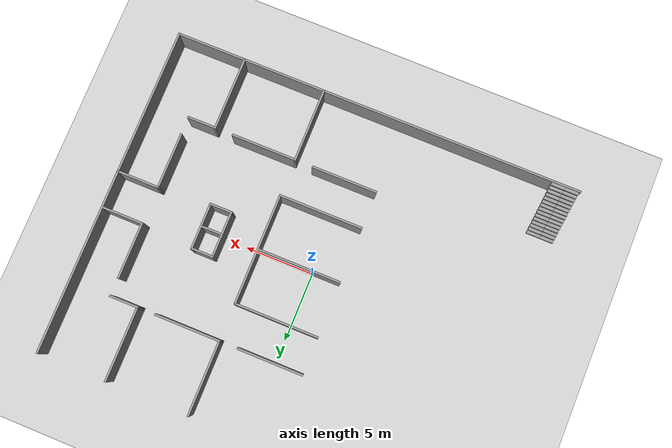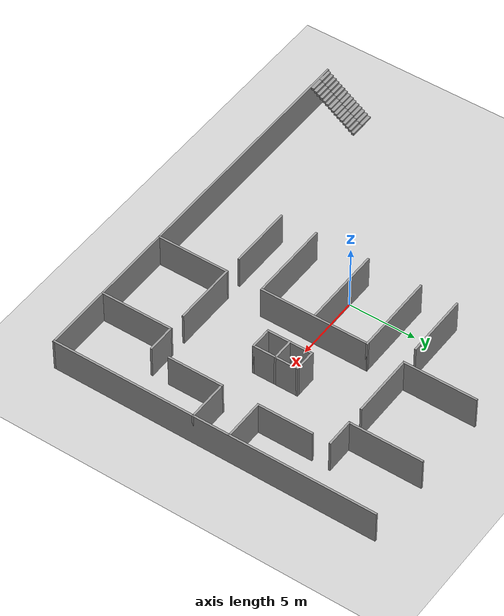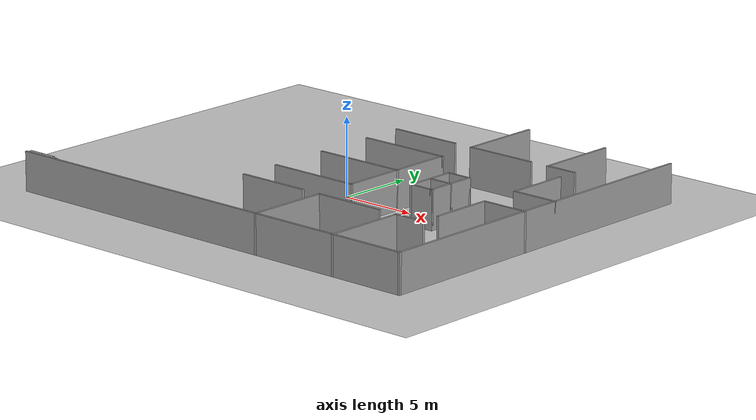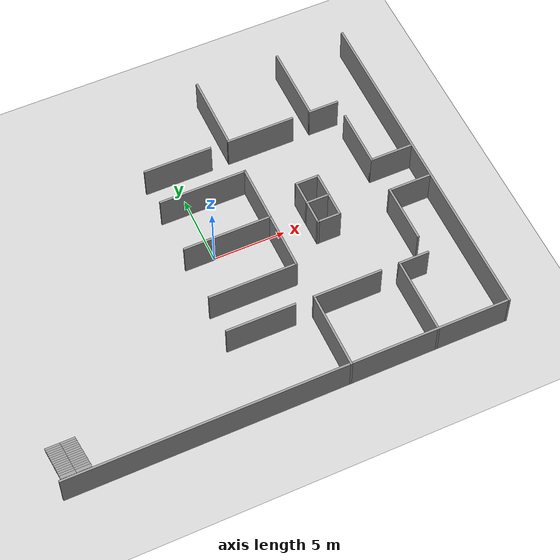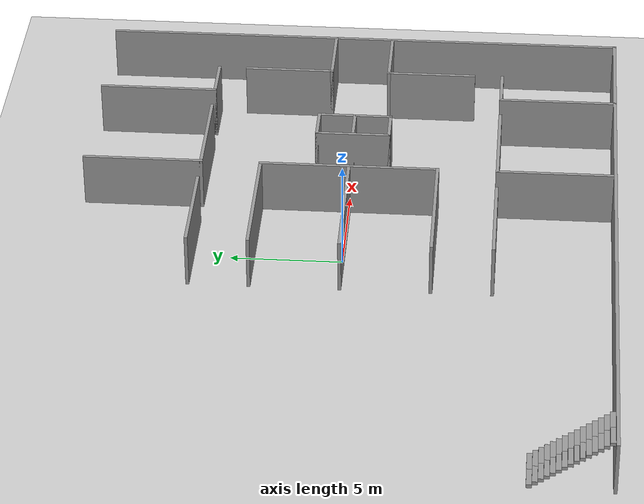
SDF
<sdf version="1.6">
 <world name="default">
  <model name="ground_plane">
   <static>1</static>
   <link name="link">
    <collision name="collision">
     <geometry><plane><normal>0 0 1</normal><size>100 100</size></plane></geometry>
     <surface>
      <contact><collide_bitmask>65535</collide_bitmask></contact>
      <friction><ode><mu>100</mu><mu2>50</mu2></ode></friction>
     </surface>
    </collision>
    <visual name="visual">
     <cast_shadows>0</cast_shadows>
     <geometry><plane><normal>0 0 1</normal><size>100 100</size></plane></geometry>
     <material>
      <script><uri>file://media/materials/scripts/gazebo.material</uri><name>Gazebo/Grey</name></script>
     </material>
    </visual>
   </link>
  </model>
  <model name="hospital_01">
   <pose>0 0 0 0 0 -1.57</pose>
   <link name="Stairs_7">
    <visual name="Stairs_7_Visual_0">
     <pose>8.53246 -13.4386 0.083333 0 -0 1.5708</pose>
     <geometry><box><size>1 0.233333 0.166667</size></box></geometry>
     <material>
      <script><uri>file://media/materials/scripts/gazebo.material</uri><name>Gazebo/Grey</name></script>
      <ambient>1 1 1 1</ambient>
     </material>
     <meta><layer>0</layer></meta>
    </visual>
    <collision name="Stairs_7_Collision_0">
     <geometry><box><size>1 0.233333 0.166667</size></box></geometry>
     <pose>8.53246 -13.4386 0.083333 0 -0 1.5708</pose>
    </collision>
    <visual name="Stairs_7_Visual_1">
     <pose>8.7658 -13.4386 0.25 0 -0 1.5708</pose>
     <geometry><box><size>1 0.233333 0.166667</size></box></geometry>
     <material>
      <script><uri>file://media/materials/scripts/gazebo.material</uri><name>Gazebo/Grey</name></script>
      <ambient>1 1 1 1</ambient>
     </material>
     <meta><layer>0</layer></meta>
    </visual>
    <collision name="Stairs_7_Collision_1">
     <geometry><box><size>1 0.233333 0.166667</size></box></geometry>
     <pose>8.7658 -13.4386 0.25 0 -0 1.5708</pose>
    </collision>
    <visual name="Stairs_7_Visual_2">
     <pose>8.99913 -13.4386 0.416667 0 -0 1.5708</pose>
     <geometry><box><size>1 0.233333 0.166667</size></box></geometry>
     <material>
      <script><uri>file://media/materials/scripts/gazebo.material</uri><name>Gazebo/Grey</name></script>
      <ambient>1 1 1 1</ambient>
     </material>
     <meta><layer>0</layer></meta>
    </visual>
    <collision name="Stairs_7_Collision_2">
     <geometry><box><size>1 0.233333 0.166667</size></box></geometry>
     <pose>8.99913 -13.4386 0.416667 0 -0 1.5708</pose>
    </collision>
    <visual name="Stairs_7_Visual_3">
     <pose>9.23246 -13.4386 0.583333 0 -0 1.5708</pose>
     <geometry><box><size>1 0.233333 0.166667</size></box></geometry>
     <material>
      <script><uri>file://media/materials/scripts/gazebo.material</uri><name>Gazebo/Grey</name></script>
      <ambient>1 1 1 1</ambient>
     </material>
     <meta><layer>0</layer></meta>
    </visual>
    <collision name="Stairs_7_Collision_3">
     <geometry><box><size>1 0.233333 0.166667</size></box></geometry>
     <pose>9.23246 -13.4386 0.583333 0 -0 1.5708</pose>
    </collision>
    <visual name="Stairs_7_Visual_4">
     <pose>9.4658 -13.4386 0.75 0 -0 1.5708</pose>
     <geometry><box><size>1 0.233333 0.166667</size></box></geometry>
     <material>
      <script><uri>file://media/materials/scripts/gazebo.material</uri><name>Gazebo/Grey</name></script>
      <ambient>1 1 1 1</ambient>
     </material>
     <meta><layer>0</layer></meta>
    </visual>
    <collision name="Stairs_7_Collision_4">
     <geometry><box><size>1 0.233333 0.166667</size></box></geometry>
     <pose>9.4658 -13.4386 0.75 0 -0 1.5708</pose>
    </collision>
    <visual name="Stairs_7_Visual_5">
     <pose>9.69913 -13.4386 0.916667 0 -0 1.5708</pose>
     <geometry><box><size>1 0.233333 0.166667</size></box></geometry>
     <material>
      <script><uri>file://media/materials/scripts/gazebo.material</uri><name>Gazebo/Grey</name></script>
      <ambient>1 1 1 1</ambient>
     </material>
     <meta><layer>0</layer></meta>
    </visual>
    <collision name="Stairs_7_Collision_5">
     <geometry><box><size>1 0.233333 0.166667</size></box></geometry>
     <pose>9.69913 -13.4386 0.916667 0 -0 1.5708</pose>
    </collision>
    <visual name="Stairs_7_Visual_6">
     <pose>9.93246 -13.4386 1.08333 0 -0 1.5708</pose>
     <geometry><box><size>1 0.233333 0.166667</size></box></geometry>
     <material>
      <script><uri>file://media/materials/scripts/gazebo.material</uri><name>Gazebo/Grey</name></script>
      <ambient>1 1 1 1</ambient>
     </material>
     <meta><layer>0</layer></meta>
    </visual>
    <collision name="Stairs_7_Collision_6">
     <geometry><box><size>1 0.233333 0.166667</size></box></geometry>
     <pose>9.93246 -13.4386 1.08333 0 -0 1.5708</pose>
    </collision>
    <visual name="Stairs_7_Visual_7">
     <pose>10.1658 -13.4386 1.25 0 -0 1.5708</pose>
     <geometry><box><size>1 0.233333 0.166667</size></box></geometry>
     <material>
      <script><uri>file://media/materials/scripts/gazebo.material</uri><name>Gazebo/Grey</name></script>
      <ambient>1 1 1 1</ambient>
     </material>
     <meta><layer>0</layer></meta>
    </visual>
    <collision name="Stairs_7_Collision_7">
     <geometry><box><size>1 0.233333 0.166667</size></box></geometry>
     <pose>10.1658 -13.4386 1.25 0 -0 1.5708</pose>
    </collision>
    <visual name="Stairs_7_Visual_8">
     <pose>10.3991 -13.4386 1.41667 0 -0 1.5708</pose>
     <geometry><box><size>1 0.233333 0.166667</size></box></geometry>
     <material>
      <script><uri>file://media/materials/scripts/gazebo.material</uri><name>Gazebo/Grey</name></script>
      <ambient>1 1 1 1</ambient>
     </material>
     <meta><layer>0</layer></meta>
    </visual>
    <collision name="Stairs_7_Collision_8">
     <geometry><box><size>1 0.233333 0.166667</size></box></geometry>
     <pose>10.3991 -13.4386 1.41667 0 -0 1.5708</pose>
    </collision>
    <visual name="Stairs_7_Visual_9">
     <pose>10.6325 -13.4386 1.58333 0 -0 1.5708</pose>
     <geometry><box><size>1 0.233333 0.166667</size></box></geometry>
     <material>
      <script><uri>file://media/materials/scripts/gazebo.material</uri><name>Gazebo/Grey</name></script>
      <ambient>1 1 1 1</ambient>
     </material>
     <meta><layer>0</layer></meta>
    </visual>
    <collision name="Stairs_7_Collision_9">
     <geometry><box><size>1 0.233333 0.166667</size></box></geometry>
     <pose>10.6325 -13.4386 1.58333 0 -0 1.5708</pose>
    </collision>
    <visual name="Stairs_7_Visual_10">
     <pose>10.8658 -13.4386 1.75 0 -0 1.5708</pose>
     <geometry><box><size>1 0.233333 0.166667</size></box></geometry>
     <material>
      <script><uri>file://media/materials/scripts/gazebo.material</uri><name>Gazebo/Grey</name></script>
      <ambient>1 1 1 1</ambient>
     </material>
     <meta><layer>0</layer></meta>
    </visual>
    <collision name="Stairs_7_Collision_10">
     <geometry><box><size>1 0.233333 0.166667</size></box></geometry>
     <pose>10.8658 -13.4386 1.75 0 -0 1.5708</pose>
    </collision>
    <visual name="Stairs_7_Visual_11">
     <pose>11.0991 -13.4386 1.91667 0 -0 1.5708</pose>
     <geometry><box><size>1 0.233333 0.166667</size></box></geometry>
     <material>
      <script><uri>file://media/materials/scripts/gazebo.material</uri><name>Gazebo/Grey</name></script>
      <ambient>1 1 1 1</ambient>
     </material>
     <meta><layer>0</layer></meta>
    </visual>
    <collision name="Stairs_7_Collision_11">
     <geometry><box><size>1 0.233333 0.166667</size></box></geometry>
     <pose>11.0991 -13.4386 1.91667 0 -0 1.5708</pose>
    </collision>
    <visual name="Stairs_7_Visual_12">
     <pose>11.3325 -13.4386 2.08333 0 -0 1.5708</pose>
     <geometry><box><size>1 0.233333 0.166667</size></box></geometry>
     <material>
      <script><uri>file://media/materials/scripts/gazebo.material</uri><name>Gazebo/Grey</name></script>
      <ambient>1 1 1 1</ambient>
     </material>
     <meta><layer>0</layer></meta>
    </visual>
    <collision name="Stairs_7_Collision_12">
     <geometry><box><size>1 0.233333 0.166667</size></box></geometry>
     <pose>11.3325 -13.4386 2.08333 0 -0 1.5708</pose>
    </collision>
    <visual name="Stairs_7_Visual_13">
     <pose>11.5658 -13.4386 2.25 0 -0 1.5708</pose>
     <geometry><box><size>1 0.233333 0.166667</size></box></geometry>
     <material>
      <script><uri>file://media/materials/scripts/gazebo.material</uri><name>Gazebo/Grey</name></script>
      <ambient>1 1 1 1</ambient>
     </material>
     <meta><layer>0</layer></meta>
    </visual>
    <collision name="Stairs_7_Collision_13">
     <geometry><box><size>1 0.233333 0.166667</size></box></geometry>
     <pose>11.5658 -13.4386 2.25 0 -0 1.5708</pose>
    </collision>
    <visual name="Stairs_7_Visual_14">
     <pose>11.7991 -13.4386 2.41667 0 -0 1.5708</pose>
     <geometry><box><size>1 0.233333 0.166667</size></box></geometry>
     <material>
      <script><uri>file://media/materials/scripts/gazebo.material</uri><name>Gazebo/Grey</name></script>
      <ambient>1 1 1 1</ambient>
     </material>
     <meta><layer>0</layer></meta>
    </visual>
    <collision name="Stairs_7_Collision_14">
     <geometry><box><size>1 0.233333 0.166667</size></box></geometry>
     <pose>11.7991 -13.4386 2.41667 0 -0 1.5708</pose>
    </collision>
   </link>
   <link name="Stairs_8">
    <visual name="Stairs_8_Visual_0">
     <pose>8.53246 -14.4268 0.083333 0 -0 1.5708</pose>
     <geometry><box><size>1 0.233333 0.166667</size></box></geometry>
     <material>
      <script><uri>file://media/materials/scripts/gazebo.material</uri><name>Gazebo/Grey</name></script>
      <ambient>1 1 1 1</ambient>
     </material>
     <meta><layer>0</layer></meta>
    </visual>
    <collision name="Stairs_8_Collision_0">
     <geometry><box><size>1 0.233333 0.166667</size></box></geometry>
     <pose>8.53246 -14.4268 0.083333 0 -0 1.5708</pose>
    </collision>
    <visual name="Stairs_8_Visual_1">
     <pose>8.7658 -14.4268 0.25 0 -0 1.5708</pose>
     <geometry><box><size>1 0.233333 0.166667</size></box></geometry>
     <material>
      <script><uri>file://media/materials/scripts/gazebo.material</uri><name>Gazebo/Grey</name></script>
      <ambient>1 1 1 1</ambient>
     </material>
     <meta><layer>0</layer></meta>
    </visual>
    <collision name="Stairs_8_Collision_1">
     <geometry><box><size>1 0.233333 0.166667</size></box></geometry>
     <pose>8.7658 -14.4268 0.25 0 -0 1.5708</pose>
    </collision>
    <visual name="Stairs_8_Visual_2">
     <pose>8.99913 -14.4268 0.416667 0 -0 1.5708</pose>
     <geometry><box><size>1 0.233333 0.166667</size></box></geometry>
     <material>
      <script><uri>file://media/materials/scripts/gazebo.material</uri><name>Gazebo/Grey</name></script>
      <ambient>1 1 1 1</ambient>
     </material>
     <meta><layer>0</layer></meta>
    </visual>
    <collision name="Stairs_8_Collision_2">
     <geometry><box><size>1 0.233333 0.166667</size></box></geometry>
     <pose>8.99913 -14.4268 0.416667 0 -0 1.5708</pose>
    </collision>
    <visual name="Stairs_8_Visual_3">
     <pose>9.23246 -14.4268 0.583333 0 -0 1.5708</pose>
     <geometry><box><size>1 0.233333 0.166667</size></box></geometry>
     <material>
      <script><uri>file://media/materials/scripts/gazebo.material</uri><name>Gazebo/Grey</name></script>
      <ambient>1 1 1 1</ambient>
     </material>
     <meta><layer>0</layer></meta>
    </visual>
    <collision name="Stairs_8_Collision_3">
     <geometry><box><size>1 0.233333 0.166667</size></box></geometry>
     <pose>9.23246 -14.4268 0.583333 0 -0 1.5708</pose>
    </collision>
    <visual name="Stairs_8_Visual_4">
     <pose>9.4658 -14.4268 0.75 0 -0 1.5708</pose>
     <geometry><box><size>1 0.233333 0.166667</size></box></geometry>
     <material>
      <script><uri>file://media/materials/scripts/gazebo.material</uri><name>Gazebo/Grey</name></script>
      <ambient>1 1 1 1</ambient>
     </material>
     <meta><layer>0</layer></meta>
    </visual>
    <collision name="Stairs_8_Collision_4">
     <geometry><box><size>1 0.233333 0.166667</size></box></geometry>
     <pose>9.4658 -14.4268 0.75 0 -0 1.5708</pose>
    </collision>
    <visual name="Stairs_8_Visual_5">
     <pose>9.69913 -14.4268 0.916667 0 -0 1.5708</pose>
     <geometry><box><size>1 0.233333 0.166667</size></box></geometry>
     <material>
      <script><uri>file://media/materials/scripts/gazebo.material</uri><name>Gazebo/Grey</name></script>
      <ambient>1 1 1 1</ambient>
     </material>
     <meta><layer>0</layer></meta>
    </visual>
    <collision name="Stairs_8_Collision_5">
     <geometry><box><size>1 0.233333 0.166667</size></box></geometry>
     <pose>9.69913 -14.4268 0.916667 0 -0 1.5708</pose>
    </collision>
    <visual name="Stairs_8_Visual_6">
     <pose>9.93246 -14.4268 1.08333 0 -0 1.5708</pose>
     <geometry><box><size>1 0.233333 0.166667</size></box></geometry>
     <material>
      <script><uri>file://media/materials/scripts/gazebo.material</uri><name>Gazebo/Grey</name></script>
      <ambient>1 1 1 1</ambient>
     </material>
     <meta><layer>0</layer></meta>
    </visual>
    <collision name="Stairs_8_Collision_6">
     <geometry><box><size>1 0.233333 0.166667</size></box></geometry>
     <pose>9.93246 -14.4268 1.08333 0 -0 1.5708</pose>
    </collision>
    <visual name="Stairs_8_Visual_7">
     <pose>10.1658 -14.4268 1.25 0 -0 1.5708</pose>
     <geometry><box><size>1 0.233333 0.166667</size></box></geometry>
     <material>
      <script><uri>file://media/materials/scripts/gazebo.material</uri><name>Gazebo/Grey</name></script>
      <ambient>1 1 1 1</ambient>
     </material>
     <meta><layer>0</layer></meta>
    </visual>
    <collision name="Stairs_8_Collision_7">
     <geometry><box><size>1 0.233333 0.166667</size></box></geometry>
     <pose>10.1658 -14.4268 1.25 0 -0 1.5708</pose>
    </collision>
    <visual name="Stairs_8_Visual_8">
     <pose>10.3991 -14.4268 1.41667 0 -0 1.5708</pose>
     <geometry><box><size>1 0.233333 0.166667</size></box></geometry>
     <material>
      <script><uri>file://media/materials/scripts/gazebo.material</uri><name>Gazebo/Grey</name></script>
      <ambient>1 1 1 1</ambient>
     </material>
     <meta><layer>0</layer></meta>
    </visual>
    <collision name="Stairs_8_Collision_8">
     <geometry><box><size>1 0.233333 0.166667</size></box></geometry>
     <pose>10.3991 -14.4268 1.41667 0 -0 1.5708</pose>
    </collision>
    <visual name="Stairs_8_Visual_9">
     <pose>10.6325 -14.4268 1.58333 0 -0 1.5708</pose>
     <geometry><box><size>1 0.233333 0.166667</size></box></geometry>
     <material>
      <script><uri>file://media/materials/scripts/gazebo.material</uri><name>Gazebo/Grey</name></script>
      <ambient>1 1 1 1</ambient>
     </material>
     <meta><layer>0</layer></meta>
    </visual>
    <collision name="Stairs_8_Collision_9">
     <geometry><box><size>1 0.233333 0.166667</size></box></geometry>
     <pose>10.6325 -14.4268 1.58333 0 -0 1.5708</pose>
    </collision>
    <visual name="Stairs_8_Visual_10">
     <pose>10.8658 -14.4268 1.75 0 -0 1.5708</pose>
     <geometry><box><size>1 0.233333 0.166667</size></box></geometry>
     <material>
      <script><uri>file://media/materials/scripts/gazebo.material</uri><name>Gazebo/Grey</name></script>
      <ambient>1 1 1 1</ambient>
     </material>
     <meta><layer>0</layer></meta>
    </visual>
    <collision name="Stairs_8_Collision_10">
     <geometry><box><size>1 0.233333 0.166667</size></box></geometry>
     <pose>10.8658 -14.4268 1.75 0 -0 1.5708</pose>
    </collision>
    <visual name="Stairs_8_Visual_11">
     <pose>11.0991 -14.4268 1.91667 0 -0 1.5708</pose>
     <geometry><box><size>1 0.233333 0.166667</size></box></geometry>
     <material>
      <script><uri>file://media/materials/scripts/gazebo.material</uri><name>Gazebo/Grey</name></script>
      <ambient>1 1 1 1</ambient>
     </material>
     <meta><layer>0</layer></meta>
    </visual>
    <collision name="Stairs_8_Collision_11">
     <geometry><box><size>1 0.233333 0.166667</size></box></geometry>
     <pose>11.0991 -14.4268 1.91667 0 -0 1.5708</pose>
    </collision>
    <visual name="Stairs_8_Visual_12">
     <pose>11.3325 -14.4268 2.08333 0 -0 1.5708</pose>
     <geometry><box><size>1 0.233333 0.166667</size></box></geometry>
     <material>
      <script><uri>file://media/materials/scripts/gazebo.material</uri><name>Gazebo/Grey</name></script>
      <ambient>1 1 1 1</ambient>
     </material>
     <meta><layer>0</layer></meta>
    </visual>
    <collision name="Stairs_8_Collision_12">
     <geometry><box><size>1 0.233333 0.166667</size></box></geometry>
     <pose>11.3325 -14.4268 2.08333 0 -0 1.5708</pose>
    </collision>
    <visual name="Stairs_8_Visual_13">
     <pose>11.5658 -14.4268 2.25 0 -0 1.5708</pose>
     <geometry><box><size>1 0.233333 0.166667</size></box></geometry>
     <material>
      <script><uri>file://media/materials/scripts/gazebo.material</uri><name>Gazebo/Grey</name></script>
      <ambient>1 1 1 1</ambient>
     </material>
     <meta><layer>0</layer></meta>
    </visual>
    <collision name="Stairs_8_Collision_13">
     <geometry><box><size>1 0.233333 0.166667</size></box></geometry>
     <pose>11.5658 -14.4268 2.25 0 -0 1.5708</pose>
    </collision>
    <visual name="Stairs_8_Visual_14">
     <pose>11.7991 -14.4268 2.41667 0 -0 1.5708</pose>
     <geometry><box><size>1 0.233333 0.166667</size></box></geometry>
     <material>
      <script><uri>file://media/materials/scripts/gazebo.material</uri><name>Gazebo/Grey</name></script>
      <ambient>1 1 1 1</ambient>
     </material>
     <meta><layer>0</layer></meta>
    </visual>
    <collision name="Stairs_8_Collision_14">
     <geometry><box><size>1 0.233333 0.166667</size></box></geometry>
     <pose>11.7991 -14.4268 2.41667 0 -0 1.5708</pose>
    </collision>
   </link>
   <link name="Wall_107">
    <collision name="Wall_107_Collision">
     <geometry><box><size>6.15 0.15 2.5</size></box></geometry>
     <pose>0 0 1.25 0 -0 0</pose>
    </collision>
    <visual name="Wall_107_Visual">
     <pose>0 0 1.25 0 -0 0</pose>
     <geometry><box><size>6.15 0.15 2.5</size></box></geometry>
     <material>
      <script><uri>file://media/materials/scripts/gazebo.material</uri><name>Gazebo/Grey</name></script>
      <ambient>1 1 1 1</ambient>
     </material>
     <meta><layer>0</layer></meta>
    </visual>
    <pose>-4 1 0 0 -0 -1.5708</pose>
   </link>
   <link name="Wall_111">
    <collision name="Wall_111_Collision">
     <geometry><box><size>6.15 0.15 2.5</size></box></geometry>
     <pose>0 0 1.25 0 -0 0</pose>
    </collision>
    <visual name="Wall_111_Visual">
     <pose>0 0 1.25 0 -0 0</pose>
     <geometry><box><size>6.15 0.15 2.5</size></box></geometry>
     <material>
      <script><uri>file://media/materials/scripts/gazebo.material</uri><name>Gazebo/Grey</name></script>
      <ambient>1 1 1 1</ambient>
     </material>
     <meta><layer>0</layer></meta>
    </visual>
    <pose>4 1 0 0 -0 -1.5708</pose>
   </link>
   <link name="Wall_117">
    <collision name="Wall_117_Collision">
     <geometry><box><size>3.45 0.15 2.5</size></box></geometry>
     <pose>0 0 1.25 0 -0 0</pose>
    </collision>
    <visual name="Wall_117_Visual">
     <pose>0 0 1.25 0 -0 0</pose>
     <geometry><box><size>3.45 0.15 2.5</size></box></geometry>
     <material>
      <script><uri>file://media/materials/scripts/gazebo.material</uri><name>Gazebo/Grey</name></script>
      <ambient>1 1 1 1</ambient>
     </material>
     <meta><layer>0</layer></meta>
    </visual>
    <pose>0 8.2 0 0 -0 0</pose>
   </link>
   <link name="Wall_119">
    <collision name="Wall_119_Collision">
     <geometry><box><size>3.45 0.15 2.5</size></box></geometry>
     <pose>0 0 1.25 0 -0 0</pose>
    </collision>
    <visual name="Wall_119_Visual">
     <pose>0 0 1.25 0 -0 0</pose>
     <geometry><box><size>3.45 0.15 2.5</size></box></geometry>
     <material>
      <script><uri>file://media/materials/scripts/gazebo.material</uri><name>Gazebo/Grey</name></script>
      <ambient>1 1 1 1</ambient>
     </material>
     <meta><layer>0</layer></meta>
    </visual>
    <pose>0 6.65 0 0 -0 0</pose>
   </link>
   <link name="Wall_121">
    <collision name="Wall_121_Collision">
     <geometry><box><size>1.7 0.15 2.5</size></box></geometry>
     <pose>0 0 1.25 0 -0 0</pose>
    </collision>
    <visual name="Wall_121_Visual">
     <pose>0 0 1.25 0 -0 0</pose>
     <geometry><box><size>1.7 0.15 2.5</size></box></geometry>
     <material>
      <script><uri>file://media/materials/scripts/gazebo.material</uri><name>Gazebo/Grey</name></script>
      <ambient>1 1 1 1</ambient>
     </material>
     <meta><layer>0</layer></meta>
    </visual>
    <pose>0 7.425 0 0 -0 -1.5708</pose>
   </link>
   <link name="Wall_123">
    <collision name="Wall_123_Collision">
     <geometry><box><size>1.7 0.15 2.5</size></box></geometry>
     <pose>0 0 1.25 0 -0 0</pose>
    </collision>
    <visual name="Wall_123_Visual">
     <pose>0 0 1.25 0 -0 0</pose>
     <geometry><box><size>1.7 0.15 2.5</size></box></geometry>
     <material>
      <script><uri>file://media/materials/scripts/gazebo.material</uri><name>Gazebo/Grey</name></script>
      <ambient>1 1 1 1</ambient>
     </material>
     <meta><layer>0</layer></meta>
    </visual>
    <pose>-1.65 7.425 0 0 -0 -1.5708</pose>
   </link>
   <link name="Wall_125">
    <collision name="Wall_125_Collision">
     <geometry><box><size>1.7 0.15 2.5</size></box></geometry>
     <pose>0 0 1.25 0 -0 0</pose>
    </collision>
    <visual name="Wall_125_Visual">
     <pose>0 0 1.25 0 -0 0</pose>
     <geometry><box><size>1.7 0.15 2.5</size></box></geometry>
     <material>
      <script><uri>file://media/materials/scripts/gazebo.material</uri><name>Gazebo/Grey</name></script>
      <ambient>1 1 1 1</ambient>
     </material>
     <meta><layer>0</layer></meta>
    </visual>
    <pose>1.65 7.425 0 0 -0 -1.5708</pose>
   </link>
   <link name="Wall_129">
    <collision name="Wall_129_Collision">
     <geometry><box><size>24.15 0.15 2.5</size></box></geometry>
     <pose>0 0 1.25 0 -0 0</pose>
    </collision>
    <visual name="Wall_129_Visual">
     <pose>0 0 1.25 0 -0 0</pose>
     <geometry><box><size>24.15 0.15 2.5</size></box></geometry>
     <material>
      <script><uri>file://media/materials/scripts/gazebo.material</uri><name>Gazebo/Grey</name></script>
      <ambient>1 1 1 1</ambient>
     </material>
     <meta><layer>0</layer></meta>
    </visual>
    <pose>0 15 0 0 -0 3.14159</pose>
   </link>
   <link name="Wall_45">
    <collision name="Wall_45_Collision">
     <geometry><box><size>4.8 0.15 2.5</size></box></geometry>
     <pose>0 0 1.25 0 -0 0</pose>
    </collision>
    <visual name="Wall_45_Visual">
     <pose>0 0 1.25 0 -0 0</pose>
     <geometry><box><size>4.8 0.15 2.5</size></box></geometry>
     <material>
      <script><uri>file://media/materials/scripts/gazebo.material</uri><name>Gazebo/Grey</name></script>
      <ambient>1 1 1 1</ambient>
     </material>
     <meta><layer>0</layer></meta>
    </visual>
    <pose>-6.7 0.325 0 0 -0 1.5708</pose>
   </link>
   <link name="Wall_47">
    <collision name="Wall_47_Collision">
     <geometry><box><size>5.45 0.15 2.5</size></box></geometry>
     <pose>0 0 1.25 0 -0 0</pose>
    </collision>
    <visual name="Wall_47_Visual">
     <pose>0 0 1.25 0 -0 0</pose>
     <geometry><box><size>5.45 0.15 2.5</size></box></geometry>
     <material>
      <script><uri>file://media/materials/scripts/gazebo.material</uri><name>Gazebo/Grey</name></script>
      <ambient>1 1 1 1</ambient>
     </material>
     <meta><layer>0</layer></meta>
    </visual>
    <pose>-9.35 4 0 0 -0 0</pose>
   </link>
   <link name="Wall_49">
    <collision name="Wall_49_Collision">
     <geometry><box><size>4.8 0.15 2.5</size></box></geometry>
     <pose>0 0 1.25 0 -0 0</pose>
    </collision>
    <visual name="Wall_49_Visual">
     <pose>0 0 1.25 0 -0 0</pose>
     <geometry><box><size>4.8 0.15 2.5</size></box></geometry>
     <material>
      <script><uri>file://media/materials/scripts/gazebo.material</uri><name>Gazebo/Grey</name></script>
      <ambient>1 1 1 1</ambient>
     </material>
     <meta><layer>0</layer></meta>
    </visual>
    <pose>-6.7 6.325 0 0 -0 1.5708</pose>
   </link>
   <link name="Wall_51">
    <collision name="Wall_51_Collision">
     <geometry><box><size>5.45 0.15 2.5</size></box></geometry>
     <pose>0 0 1.25 0 -0 0</pose>
    </collision>
    <visual name="Wall_51_Visual">
     <pose>0 0 1.25 0 -0 0</pose>
     <geometry><box><size>5.45 0.15 2.5</size></box></geometry>
     <material>
      <script><uri>file://media/materials/scripts/gazebo.material</uri><name>Gazebo/Grey</name></script>
      <ambient>1 1 1 1</ambient>
     </material>
     <meta><layer>0</layer></meta>
    </visual>
    <pose>-9.35 10 0 0 -0 0</pose>
   </link>
   <link name="Wall_53">
    <collision name="Wall_53_Collision">
     <geometry><box><size>2.15 0.15 2.5</size></box></geometry>
     <pose>0 0 1.25 0 -0 0</pose>
    </collision>
    <visual name="Wall_53_Visual">
     <pose>0 0 1.25 0 -0 0</pose>
     <geometry><box><size>2.15 0.15 2.5</size></box></geometry>
     <material>
      <script><uri>file://media/materials/scripts/gazebo.material</uri><name>Gazebo/Grey</name></script>
      <ambient>1 1 1 1</ambient>
     </material>
     <meta><layer>0</layer></meta>
    </visual>
    <pose>-6.7 11 0 0 -0 1.5708</pose>
   </link>
   <link name="Wall_55">
    <collision name="Wall_55_Collision">
     <geometry><box><size>4.15 0.15 2.5</size></box></geometry>
     <pose>0 0 1.25 0 -0 0</pose>
    </collision>
    <visual name="Wall_55_Visual">
     <pose>0 0 1.25 0 -0 0</pose>
     <geometry><box><size>4.15 0.15 2.5</size></box></geometry>
     <material>
      <script><uri>file://media/materials/scripts/gazebo.material</uri><name>Gazebo/Grey</name></script>
      <ambient>1 1 1 1</ambient>
     </material>
     <meta><layer>0</layer></meta>
    </visual>
    <pose>-3.35 12 0 0 -0 0</pose>
   </link>
   <link name="Wall_57">
    <collision name="Wall_57_Collision">
     <geometry><box><size>3.15 0.15 2.5</size></box></geometry>
     <pose>0 0 1.25 0 -0 0</pose>
    </collision>
    <visual name="Wall_57_Visual">
     <pose>0 0 1.25 0 -0 0</pose>
     <geometry><box><size>3.15 0.15 2.5</size></box></geometry>
     <material>
      <script><uri>file://media/materials/scripts/gazebo.material</uri><name>Gazebo/Grey</name></script>
      <ambient>1 1 1 1</ambient>
     </material>
     <meta><layer>0</layer></meta>
    </visual>
    <pose>-1.35 13.5 0 0 -0 1.5708</pose>
   </link>
   <link name="Wall_67">
    <collision name="Wall_67_Collision">
     <geometry><box><size>30.15 0.15 2.5</size></box></geometry>
     <pose>0 0 1.25 0 -0 0</pose>
    </collision>
    <visual name="Wall_67_Visual">
     <pose>0 0 1.25 0 -0 0</pose>
     <geometry><box><size>30.15 0.15 2.5</size></box></geometry>
     <material>
      <script><uri>file://media/materials/scripts/gazebo.material</uri><name>Gazebo/Grey</name></script>
      <ambient>1 1 1 1</ambient>
     </material>
     <meta><layer>0</layer></meta>
    </visual>
    <pose>12 0 0 0 -0 1.5708</pose>
   </link>
   <link name="Wall_81">
    <collision name="Wall_81_Collision">
     <geometry><box><size>4.8 0.15 2.5</size></box></geometry>
     <pose>0 0 1.25 0 -0 0</pose>
    </collision>
    <visual name="Wall_81_Visual">
     <pose>0 0 1.25 0 -0 0</pose>
     <geometry><box><size>4.8 0.15 2.5</size></box></geometry>
     <material>
      <script><uri>file://media/materials/scripts/gazebo.material</uri><name>Gazebo/Grey</name></script>
      <ambient>1 1 1 1</ambient>
     </material>
     <meta><layer>0</layer></meta>
    </visual>
    <pose>6.7 0.325 0 0 -0 1.5708</pose>
   </link>
   <link name="Wall_83">
    <collision name="Wall_83_Collision">
     <geometry><box><size>4.8 0.15 2.5</size></box></geometry>
     <pose>0 0 1.25 0 -0 0</pose>
    </collision>
    <visual name="Wall_83_Visual">
     <pose>0 0 1.25 0 -0 0</pose>
     <geometry><box><size>4.8 0.15 2.5</size></box></geometry>
     <material>
      <script><uri>file://media/materials/scripts/gazebo.material</uri><name>Gazebo/Grey</name></script>
      <ambient>1 1 1 1</ambient>
     </material>
     <meta><layer>0</layer></meta>
    </visual>
    <pose>6.7 6.325 0 0 -0 1.5708</pose>
   </link>
   <link name="Wall_85">
    <collision name="Wall_85_Collision">
     <geometry><box><size>5.45 0.15 2.5</size></box></geometry>
     <pose>0 0 1.25 0 -0 0</pose>
    </collision>
    <visual name="Wall_85_Visual">
     <pose>0 0 1.25 0 -0 0</pose>
     <geometry><box><size>5.45 0.15 2.5</size></box></geometry>
     <material>
      <script><uri>file://media/materials/scripts/gazebo.material</uri><name>Gazebo/Grey</name></script>
      <ambient>1 1 1 1</ambient>
     </material>
     <meta><layer>0</layer></meta>
    </visual>
    <pose>9.35 4 0 0 -0 0</pose>
   </link>
   <link name="Wall_87">
    <collision name="Wall_87_Collision">
     <geometry><box><size>2.15 0.15 2.5</size></box></geometry>
     <pose>0 0 1.25 0 -0 0</pose>
    </collision>
    <visual name="Wall_87_Visual">
     <pose>0 0 1.25 0 -0 0</pose>
     <geometry><box><size>2.15 0.15 2.5</size></box></geometry>
     <material>
      <script><uri>file://media/materials/scripts/gazebo.material</uri><name>Gazebo/Grey</name></script>
      <ambient>1 1 1 1</ambient>
     </material>
     <meta><layer>0</layer></meta>
    </visual>
    <pose>6.7 11 0 0 -0 1.5708</pose>
   </link>
   <link name="Wall_89">
    <collision name="Wall_89_Collision">
     <geometry><box><size>5.45 0.15 2.5</size></box></geometry>
     <pose>0 0 1.25 0 -0 0</pose>
    </collision>
    <visual name="Wall_89_Visual">
     <pose>0 0 1.25 0 -0 0</pose>
     <geometry><box><size>5.45 0.15 2.5</size></box></geometry>
     <material>
      <script><uri>file://media/materials/scripts/gazebo.material</uri><name>Gazebo/Grey</name></script>
      <ambient>1 1 1 1</ambient>
     </material>
     <meta><layer>0</layer></meta>
    </visual>
    <pose>9.35 10 0 0 -0 0</pose>
   </link>
   <link name="Wall_91">
    <collision name="Wall_91_Collision">
     <geometry><box><size>4.15 0.15 2.5</size></box></geometry>
     <pose>0 0 1.25 0 -0 0</pose>
    </collision>
    <visual name="Wall_91_Visual">
     <pose>0 0 1.25 0 -0 0</pose>
     <geometry><box><size>4.15 0.15 2.5</size></box></geometry>
     <material>
      <script><uri>file://media/materials/scripts/gazebo.material</uri><name>Gazebo/Grey</name></script>
      <ambient>1 1 1 1</ambient>
     </material>
     <meta><layer>0</layer></meta>
    </visual>
    <pose>3.35 12 0 0 -0 3.14159</pose>
   </link>
   <link name="Wall_93">
    <collision name="Wall_93_Collision">
     <geometry><box><size>3.15 0.15 2.5</size></box></geometry>
     <pose>0 0 1.25 0 -0 0</pose>
    </collision>
    <visual name="Wall_93_Visual">
     <pose>0 0 1.25 0 -0 0</pose>
     <geometry><box><size>3.15 0.15 2.5</size></box></geometry>
     <material>
      <script><uri>file://media/materials/scripts/gazebo.material</uri><name>Gazebo/Grey</name></script>
      <ambient>1 1 1 1</ambient>
     </material>
     <meta><layer>0</layer></meta>
    </visual>
    <pose>1.35 13.5 0 0 -0 1.5708</pose>
   </link>
   <link name="Wall_95">
    <collision name="Wall_95_Collision">
     <geometry><box><size>6.15 0.15 2.5</size></box></geometry>
     <pose>0 0 1.25 0 -0 0</pose>
    </collision>
    <visual name="Wall_95_Visual">
     <pose>0 0 1.25 0 -0 0</pose>
     <geometry><box><size>6.15 0.15 2.5</size></box></geometry>
     <material>
      <script><uri>file://media/materials/scripts/gazebo.material</uri><name>Gazebo/Grey</name></script>
      <ambient>1 1 1 1</ambient>
     </material>
     <meta><layer>0</layer></meta>
    </visual>
    <pose>0 1 0 0 -0 1.5708</pose>
   </link>
   <link name="Wall_97">
    <collision name="Wall_97_Collision">
     <geometry><box><size>8.15 0.15 2.5</size></box></geometry>
     <pose>0 0 1.25 0 -0 0</pose>
    </collision>
    <visual name="Wall_97_Visual">
     <pose>0 0 1.25 0 -0 0</pose>
     <geometry><box><size>8.15 0.15 2.5</size></box></geometry>
     <material>
      <script><uri>file://media/materials/scripts/gazebo.material</uri><name>Gazebo/Grey</name></script>
      <ambient>1 1 1 1</ambient>
     </material>
     <meta><layer>0</layer></meta>
    </visual>
    <pose>0 4 0 0 -0 0</pose>
   </link>
   <static>1</static>
  </model>
 </world>
</sdf>
